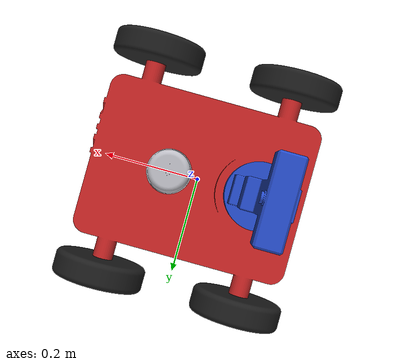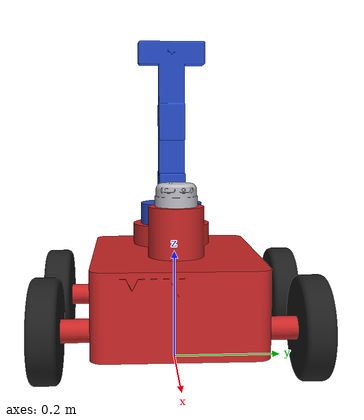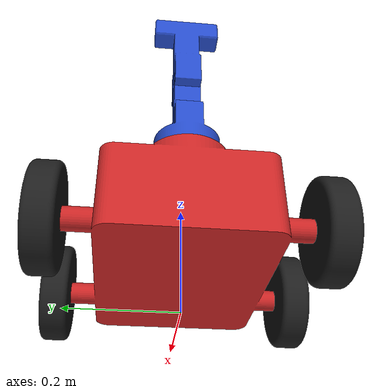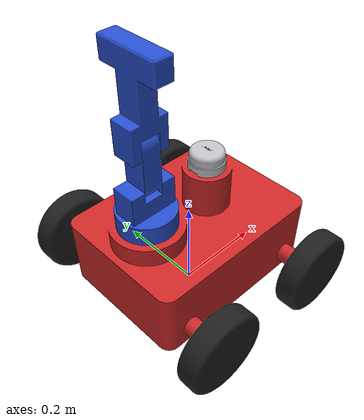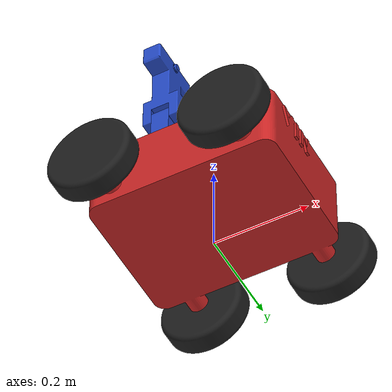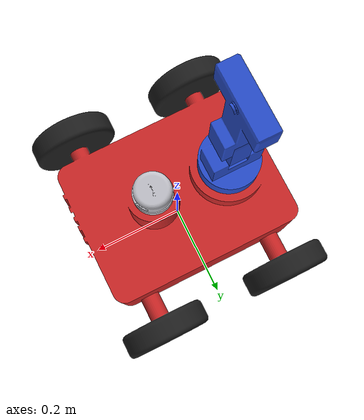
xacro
<?xml version="1.0" ?>
<robot name="Autonomous_Vin_V1" xmlns:xacro="http://www.ros.org/wiki/xacro">

  <xacro:include filename="$(find Autonomous_Vin_V1_description)/urdf/materials.xacro" />
  <xacro:include filename="$(find Autonomous_Vin_V1_description)/urdf/Autonomous_Vin_V1.trans" />
  <xacro:include filename="$(find Autonomous_Vin_V1_description)/urdf/Autonomous_Vin_V1.gazebo" />

  <ros2_control name="GazeboSystem" type="system">
    <hardware>
      <plugin>gazebo_ros2_control/GazeboSystem</plugin>
    </hardware>

    <joint name="Revolute 10">
      <command_interface name="position"/>
      <state_interface name="position"/>
      <state_interface name="velocity"/>
    </joint>
    <joint name="Revolute 11">
      <command_interface name="position"/>
      <state_interface name="position">
        <param name="initial_value">0.0</param>
      </state_interface>
      <state_interface name="velocity"/>
    </joint>
    <joint name="Revolute 12">
      <command_interface name="position"/>
      <state_interface name="position">
        <param name="initial_value">0.0</param>
      </state_interface>
      <state_interface name="velocity"/>
    </joint>

    <joint name="Revolute 6">
      <command_interface name="velocity"/>
      <state_interface name="position"/>
      <state_interface name="velocity"/>
    </joint>
    <joint name="Revolute 7">
      <command_interface name="velocity"/>
      <state_interface name="position"/>
      <state_interface name="velocity"/>
    </joint>
    <joint name="Revolute 8">
      <command_interface name="velocity"/>
      <state_interface name="position"/>
      <state_interface name="velocity"/>
    </joint>
    <joint name="Revolute 9">
      <command_interface name="velocity"/>
      <state_interface name="position"/>
      <state_interface name="velocity"/>
    </joint>
  </ros2_control>

  <link name="base_link">
    <inertial>
      <origin xyz="-0.002063968042663588 -1.987201768148543e-05 0.13233013624671025" rpy="0 0 0"/>
      <mass value="153.81521073081208"/>
      <inertia ixx="1.511602" iyy="2.386477" izz="3.112594" ixy="0.000625" iyz="0.000124" ixz="0.021649"/>
    </inertial>
    <visual>
      <origin xyz="0 0 0" rpy="0 0 0"/>
      <geometry>
        <mesh filename="file://$(find Autonomous_Vin_V1_description)/meshes/base_link.stl" scale="0.001 0.001 0.001"/>
      </geometry>
    </visual>
    <collision>
      <origin xyz="0 0 0" rpy="0 0 0"/>
      <geometry>
        <mesh filename="file://$(find Autonomous_Vin_V1_description)/meshes/base_link.stl" scale="0.001 0.001 0.001"/>
      </geometry>
    </collision>
  </link>

  <link name="lidar_1">
    <inertial>
      <origin xyz="-0.0012345701242775092 -1.4984662802257324e-05 0.019298490095559062" rpy="0 0 0"/>
      <mass value="1.298267249619559"/>
      <inertia ixx="0.000619" iyy="0.00059" izz="0.000863" ixy="0.0" iyz="0.0" ixz="1.7e-05"/>
    </inertial>
    <visual>
      <origin xyz="-0.05 -0.0 -0.29" rpy="0 0 0"/>
      <geometry>
        <mesh filename="file://$(find Autonomous_Vin_V1_description)/meshes/lidar_1.stl" scale="0.001 0.001 0.001"/>
      </geometry>
    </visual>
    <collision>
      <origin xyz="-0.05 -0.0 -0.29" rpy="0 0 0"/>
      <geometry>
        <mesh filename="file://$(find Autonomous_Vin_V1_description)/meshes/lidar_1.stl" scale="0.001 0.001 0.001"/>
      </geometry>
    </collision>
  </link>

  <link name="front_left_wheel_1">
    <inertial>
      <origin xyz="0.0 -0.024999999999999967 2.7755575615628914e-17" rpy="0 0 0"/>
      <mass value="9.802110524178216"/>
      <inertia ixx="0.021493" iyy="0.039018" izz="0.021493" ixy="0.0" iyz="0.0" ixz="0.0"/>
    </inertial>
    <visual>
      <origin xyz="-0.14 0.2 -0.09" rpy="0 0 0"/>
      <geometry>
        <mesh filename="file://$(find Autonomous_Vin_V1_description)/meshes/front_left_wheel_1.stl" scale="0.001 0.001 0.001"/>
      </geometry>
    </visual>
    <collision>
      <origin xyz="-0.14 0.2 -0.09" rpy="0 0 0"/>
      <geometry>
        <mesh filename="file://$(find Autonomous_Vin_V1_description)/meshes/front_left_wheel_1.stl" scale="0.001 0.001 0.001"/>
      </geometry>
    </collision>
  </link>

  <link name="back_left_wheel_1">
    <inertial>
      <origin xyz="0.0 -0.024999999999999994 2.7755575615628914e-17" rpy="0 0 0"/>
      <mass value="9.802110524178214"/>
      <inertia ixx="0.021493" iyy="0.039018" izz="0.021493" ixy="0.0" iyz="-0.0" ixz="-0.0"/>
    </inertial>
    <visual>
      <origin xyz="0.14 0.2 -0.09" rpy="0 0 0"/>
      <geometry>
        <mesh filename="file://$(find Autonomous_Vin_V1_description)/meshes/back_left_wheel_1.stl" scale="0.001 0.001 0.001"/>
      </geometry>
    </visual>
    <collision>
      <origin xyz="0.14 0.2 -0.09" rpy="0 0 0"/>
      <geometry>
        <mesh filename="file://$(find Autonomous_Vin_V1_description)/meshes/back_left_wheel_1.stl" scale="0.001 0.001 0.001"/>
      </geometry>
    </collision>
  </link>

  <link name="front_right_wheel_1">
    <inertial>
      <origin xyz="0.0 0.025000000000000022 0.0" rpy="0 0 0"/>
      <mass value="9.802110524178214"/>
      <inertia ixx="0.021493" iyy="0.039018" izz="0.021493" ixy="0.0" iyz="0.0" ixz="-0.0"/>
    </inertial>
    <visual>
      <origin xyz="-0.14 -0.2 -0.09" rpy="0 0 0"/>
      <geometry>
        <mesh filename="file://$(find Autonomous_Vin_V1_description)/meshes/front_right_wheel_1.stl" scale="0.001 0.001 0.001"/>
      </geometry>
    </visual>
    <collision>
      <origin xyz="-0.14 -0.2 -0.09" rpy="0 0 0"/>
      <geometry>
        <mesh filename="file://$(find Autonomous_Vin_V1_description)/meshes/front_right_wheel_1.stl" scale="0.001 0.001 0.001"/>
      </geometry>
    </collision>
  </link>

  <link name="back_right_wheel_1">
    <inertial>
      <origin xyz="0.0 0.025000000000000022 -1.3877787807814457e-17" rpy="0 0 0"/>
      <mass value="9.802110524178218"/>
      <inertia ixx="0.021493" iyy="0.039018" izz="0.021493" ixy="-0.0" iyz="0.0" ixz="-0.0"/>
    </inertial>
    <visual>
      <origin xyz="0.14 -0.2 -0.09" rpy="0 0 0"/>
      <geometry>
        <mesh filename="file://$(find Autonomous_Vin_V1_description)/meshes/back_right_wheel_1.stl" scale="0.001 0.001 0.001"/>
      </geometry>
    </visual>
    <collision>
      <origin xyz="0.14 -0.2 -0.09" rpy="0 0 0"/>
      <geometry>
        <mesh filename="file://$(find Autonomous_Vin_V1_description)/meshes/back_right_wheel_1.stl" scale="0.001 0.001 0.001"/>
      </geometry>
    </collision>
  </link>

  <link name="first_link_1">
    <inertial>
      <origin xyz="5.551115123125783e-17 7.07023272645337e-16 0.05458818822189343" rpy="0 0 0"/>
      <mass value="9.088215786708611"/>
      <inertia ixx="0.01806" iyy="0.019563" izz="0.015104" ixy="0.0" iyz="-0.0" ixz="0.0"/>
    </inertial>
    <visual>
      <origin xyz="0.11 -0.0 -0.2" rpy="0 0 0"/>
      <geometry>
        <mesh filename="file://$(find Autonomous_Vin_V1_description)/meshes/first_link_1.stl" scale="0.001 0.001 0.001"/>
      </geometry>
    </visual>
    <collision>
      <origin xyz="0.11 -0.0 -0.2" rpy="0 0 0"/>
      <geometry>
        <mesh filename="file://$(find Autonomous_Vin_V1_description)/meshes/first_link_1.stl" scale="0.001 0.001 0.001"/>
      </geometry>
    </collision>
  </link>

  <link name="second_link_1">
    <inertial>
      <origin xyz="-0.020000000000000004 -1.4146203686619534e-14 0.05114879023705743" rpy="0 0 0"/>
      <mass value="1.8232145536056348"/>
      <inertia ixx="0.00253" iyy="0.002415" izz="0.000601" ixy="-0.0" iyz="-0.0" ixz="0.0"/>
    </inertial>
    <visual>
      <origin xyz="0.09 -0.0 -0.33" rpy="0 0 0"/>
      <geometry>
        <mesh filename="file://$(find Autonomous_Vin_V1_description)/meshes/second_link_1.stl" scale="0.001 0.001 0.001"/>
      </geometry>
    </visual>
    <collision>
      <origin xyz="0.09 -0.0 -0.33" rpy="0 0 0"/>
      <geometry>
        <mesh filename="file://$(find Autonomous_Vin_V1_description)/meshes/second_link_1.stl" scale="0.001 0.001 0.001"/>
      </geometry>
    </collision>
  </link>

  <link name="third_link_1">
    <inertial>
      <origin xyz="-0.019932570293638943 1.384488920803934e-06 0.09215199523103351" rpy="0 0 0"/>
      <mass value="4.591742673916472"/>
      <inertia ixx="0.018254" iyy="0.016649" izz="0.004578" ixy="0.0" iyz="1e-06" ixz="-1.7e-05"/>
    </inertial>
    <visual>
      <origin xyz="0.09 -0.0 -0.421" rpy="0 0 0"/>
      <geometry>
        <mesh filename="file://$(find Autonomous_Vin_V1_description)/meshes/third_link_1.stl" scale="0.001 0.001 0.001"/>
      </geometry>
    </visual>
    <collision>
      <origin xyz="0.09 -0.0 -0.421" rpy="0 0 0"/>
      <geometry>
        <mesh filename="file://$(find Autonomous_Vin_V1_description)/meshes/third_link_1.stl" scale="0.001 0.001 0.001"/>
      </geometry>
    </collision>
  </link>

  <joint name="Rigid 5" type="fixed">
    <origin xyz="0.05 0.0 0.29" rpy="0 0 0"/>
    <parent link="base_link"/>
    <child link="lidar_1"/>
  </joint>

  <joint name="Revolute 6" type="continuous">
    <origin xyz="0.14 -0.2 0.09" rpy="0 0 0"/>
    <parent link="base_link"/>
    <child link="front_left_wheel_1"/>
    <axis xyz="0.0 1.0 0.0"/>
    <dynamics damping="0.1" friction="0.1"/>
  </joint>

  <joint name="Revolute 7" type="continuous">
    <origin xyz="-0.14 -0.2 0.09" rpy="0 0 0"/>
    <parent link="base_link"/>
    <child link="back_left_wheel_1"/>
    <axis xyz="0.0 1.0 0.0"/>
    <dynamics damping="0.1" friction="0.1"/>
  </joint>

  <joint name="Revolute 8" type="continuous">
    <origin xyz="0.14 0.2 0.09" rpy="0 0 0"/>
    <parent link="base_link"/>
    <child link="front_right_wheel_1"/>
    <axis xyz="0.0 1.0 0.0"/>
    <dynamics damping="0.1" friction="0.1"/>
  </joint>

  <joint name="Revolute 9" type="continuous">
    <origin xyz="-0.14 0.2 0.09" rpy="0 0 0"/>
    <parent link="base_link"/>
    <child link="back_right_wheel_1"/>
    <axis xyz="0.0 1.0 0.0"/>
    <dynamics damping="0.1" friction="0.1"/>
  </joint>

  <joint name="Revolute 10" type="continuous">
    <origin xyz="-0.11 0.0 0.2" rpy="0 0 0"/>
    <parent link="base_link"/>
    <child link="first_link_1"/>
    <axis xyz="0.0 0.0 1.0"/>
    <dynamics damping="50.0" friction="50.0"/>
  </joint>

  <joint name="Revolute 11" type="revolute">
    <origin xyz="0.02 0.0 0.13" rpy="0 0 0"/>
    <parent link="first_link_1"/>
    <child link="second_link_1"/>
    <axis xyz="-1.0 0.0 0.0"/>
    <limit upper="1.570796" lower="-1.570796" effort="100" velocity="100"/>
    <dynamics damping="50.0" friction="50.0"/>
  </joint>

  <joint name="Revolute 12" type="revolute">
    <origin xyz="0.0 0.0 0.091" rpy="0 0 0"/>
    <parent link="second_link_1"/>
    <child link="third_link_1"/>
    <axis xyz="1.0 0.0 0.0"/>
    <limit upper="1.570796" lower="-1.570796" effort="100" velocity="100"/>
    <dynamics damping="50.0" friction="50.0"/>
  </joint>

</robot>

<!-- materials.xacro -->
<robot name="Autonomous_Vin_V1" xmlns:xacro="http://www.ros.org/wiki/xacro" >

  <material name="silver">
    <color rgba="0.700 0.700 0.700 1.000"/>
  </material>

</robot>
